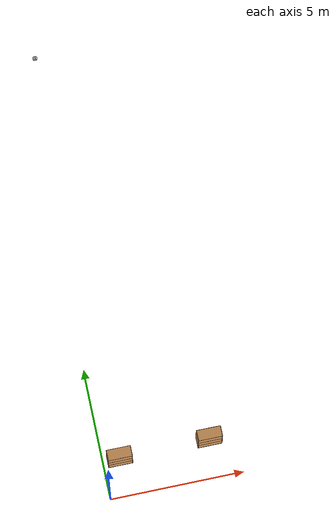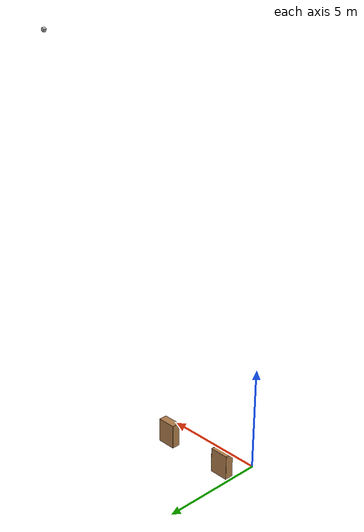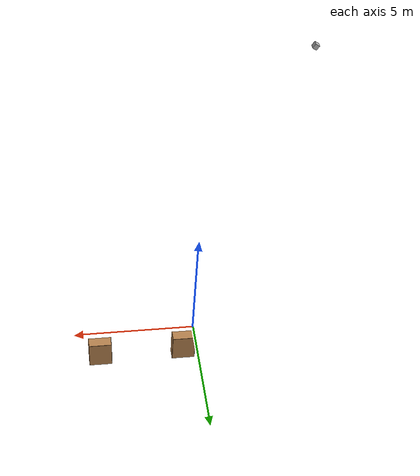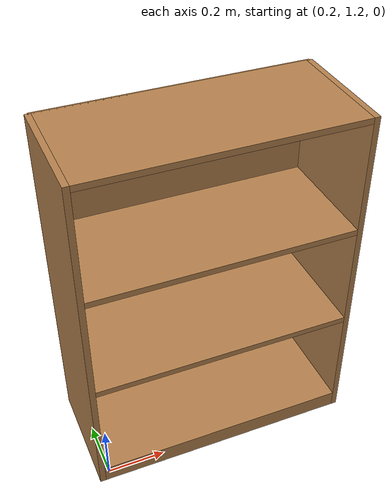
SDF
<sdf version="1.7">
 <world name="default">
  <scene>
   <grid>0</grid>
   <ambient>0.4 0.4 0.4 1</ambient>
   <background>0.7 0.7 0.7 1</background>
   <shadows>1</shadows>
  </scene>
  <light name="sun" type="directional">
   <pose>0 0 10 0 -0 0</pose>
   <diffuse>0.8 0.8 0.8 1</diffuse>
   <specular>0.2 0.2 0.2 1</specular>
   <attenuation>
    <range>1000</range>
    <constant>0.9</constant>
    <linear>0.01</linear>
    <quadratic>0.001</quadratic>
   </attenuation>
   <direction>-0.5 0.1 -0.9</direction>
   <spot><inner_angle>0</inner_angle><outer_angle>0</outer_angle><falloff>0</falloff></spot>
  </light>
  <model name="ground">
   <link name="body">
    <collision name="geom">
     <geometry><plane><normal>0 0 1</normal><size>1 1</size></plane></geometry>
     <surface><friction><ode><mu>100</mu><mu2>50</mu2></ode></friction></surface>
    </collision>
   </link>
   <static>1</static>
  </model>
  <model name="camera">
   <static>1</static>
   <pose>0 10 20 0 1 0</pose>
   <link name="link">
    <inertial>
     <mass>0.1</mass>
     <inertia>
      <ixx>0.000166667</ixx>
      <iyy>0.000166667</iyy>
      <izz>0.000166667</izz>
      <ixy>0</ixy>
      <ixz>0</ixz>
      <iyz>0</iyz>
     </inertia>
    </inertial>
    <collision name="collision"><geometry><box><size>0.1 0.1 0.1</size></box></geometry></collision>
    <visual name="visual"><geometry><box><size>0.1 0.1 0.1</size></box></geometry></visual>
    <sensor name="camera" type="camera">
     <camera>
      <horizontal_fov>1.5</horizontal_fov>
      <image><width>320</width><height>240</height></image>
      <clip><near>0.1</near><far>100</far></clip>
      <lens>
       <intrinsics><fx>171.75</fx><fy>171.75</fy><cx>160.5</cx><cy>120.5</cy><s>0</s></intrinsics>
       <type>stereographic</type>
       <scale_to_hfov>1</scale_to_hfov>
      </lens>
     </camera>
     <always_on>1</always_on>
     <update_rate>30</update_rate>
     <visualize>1</visualize>
    </sensor>
   </link>
  </model>
  <gravity>0 0 -9.8</gravity>
  <magnetic_field>6e-06 2.3e-05 -4.2e-05</magnetic_field>
  <atmosphere type="adiabatic"/>
  <physics type="ode">
   <max_step_size>0.001</max_step_size>
   <real_time_factor>1</real_time_factor>
   <real_time_update_rate>1000</real_time_update_rate>
  </physics>
  <spherical_coordinates>
   <surface_model>EARTH_WGS84</surface_model>
   <latitude_deg>0</latitude_deg>
   <longitude_deg>0</longitude_deg>
   <elevation>0</elevation>
   <heading_deg>0</heading_deg>
  </spherical_coordinates>
  <model name="bookshelf">
   <static>1</static>
   <link name="link">
    <inertial><mass>1</mass></inertial>
    <collision name="back">
     <pose>0 0.005 0.6 0 -0 0</pose>
     <geometry><box><size>0.9 0.01 1.2</size></box></geometry>
    </collision>
    <visual name="visual1">
     <pose>0 0.005 0.6 0 -0 0</pose>
     <geometry><box><size>0.9 0.01 1.2</size></box></geometry>
     <material>
      <script><uri>file://media/materials/scripts/gazebo.material</uri><name>Gazebo/Wood</name></script>
     </material>
    </visual>
    <collision name="left_side">
     <pose>0.45 -0.195 0.6 0 -0 0</pose>
     <geometry><box><size>0.02 0.4 1.2</size></box></geometry>
    </collision>
    <visual name="visual2">
     <pose>0.45 -0.195 0.6 0 -0 0</pose>
     <geometry><box><size>0.02 0.4 1.2</size></box></geometry>
     <material>
      <script><uri>file://media/materials/scripts/gazebo.material</uri><name>Gazebo/Wood</name></script>
     </material>
    </visual>
    <collision name="right_side">
     <pose>-0.45 -0.195 0.6 0 -0 0</pose>
     <geometry><box><size>0.02 0.4 1.2</size></box></geometry>
    </collision>
    <visual name="visual3">
     <pose>-0.45 -0.195 0.6 0 -0 0</pose>
     <geometry><box><size>0.02 0.4 1.2</size></box></geometry>
     <material>
      <script><uri>file://media/materials/scripts/gazebo.material</uri><name>Gazebo/Wood</name></script>
     </material>
    </visual>
    <collision name="bottom">
     <pose>0 -0.195 0.03 0 -0 0</pose>
     <geometry><box><size>0.88 0.4 0.06</size></box></geometry>
    </collision>
    <visual name="visual4">
     <pose>0 -0.195 0.03 0 -0 0</pose>
     <geometry><box><size>0.88 0.4 0.06</size></box></geometry>
     <material>
      <script><uri>file://media/materials/scripts/gazebo.material</uri><name>Gazebo/Wood</name></script>
     </material>
    </visual>
    <collision name="top">
     <pose>0 -0.195 1.19 0 -0 0</pose>
     <geometry><box><size>0.88 0.4 0.02</size></box></geometry>
    </collision>
    <visual name="visual5">
     <pose>0 -0.195 1.19 0 -0 0</pose>
     <geometry><box><size>0.88 0.4 0.02</size></box></geometry>
     <material>
      <script><uri>file://media/materials/scripts/gazebo.material</uri><name>Gazebo/Wood</name></script>
     </material>
    </visual>
    <collision name="low_shelf">
     <pose>0 -0.195 0.43 0 -0 0</pose>
     <geometry><box><size>0.88 0.4 0.02</size></box></geometry>
    </collision>
    <visual name="visual6">
     <pose>0 -0.195 0.43 0 -0 0</pose>
     <geometry><box><size>0.88 0.4 0.02</size></box></geometry>
     <material>
      <script><uri>file://media/materials/scripts/gazebo.material</uri><name>Gazebo/Wood</name></script>
     </material>
    </visual>
    <collision name="high_shelf">
     <pose>0 -0.195 0.8 0 -0 0</pose>
     <geometry><box><size>0.88 0.4 0.02</size></box></geometry>
    </collision>
    <visual name="visual7">
     <pose>0 -0.195 0.8 0 -0 0</pose>
     <geometry><box><size>0.88 0.4 0.02</size></box></geometry>
     <material>
      <script><uri>file://media/materials/scripts/gazebo.material</uri><name>Gazebo/Wood</name></script>
     </material>
    </visual>
   </link>
   <pose>3.99667 1.612 0 0 -0 0</pose>
  </model>
  <model name="bookshelf_0">
   <static>1</static>
   <link name="link">
    <inertial><mass>1</mass></inertial>
    <collision name="back">
     <pose>0 0.005 0.6 0 -0 0</pose>
     <geometry><box><size>0.9 0.01 1.2</size></box></geometry>
    </collision>
    <visual name="visual1">
     <pose>0 0.005 0.6 0 -0 0</pose>
     <geometry><box><size>0.9 0.01 1.2</size></box></geometry>
     <material>
      <script><uri>file://media/materials/scripts/gazebo.material</uri><name>Gazebo/Wood</name></script>
     </material>
    </visual>
    <collision name="left_side">
     <pose>0.45 -0.195 0.6 0 -0 0</pose>
     <geometry><box><size>0.02 0.4 1.2</size></box></geometry>
    </collision>
    <visual name="visual2">
     <pose>0.45 -0.195 0.6 0 -0 0</pose>
     <geometry><box><size>0.02 0.4 1.2</size></box></geometry>
     <material>
      <script><uri>file://media/materials/scripts/gazebo.material</uri><name>Gazebo/Wood</name></script>
     </material>
    </visual>
    <collision name="right_side">
     <pose>-0.45 -0.195 0.6 0 -0 0</pose>
     <geometry><box><size>0.02 0.4 1.2</size></box></geometry>
    </collision>
    <visual name="visual3">
     <pose>-0.45 -0.195 0.6 0 -0 0</pose>
     <geometry><box><size>0.02 0.4 1.2</size></box></geometry>
     <material>
      <script><uri>file://media/materials/scripts/gazebo.material</uri><name>Gazebo/Wood</name></script>
     </material>
    </visual>
    <collision name="bottom">
     <pose>0 -0.195 0.03 0 -0 0</pose>
     <geometry><box><size>0.88 0.4 0.06</size></box></geometry>
    </collision>
    <visual name="visual4">
     <pose>0 -0.195 0.03 0 -0 0</pose>
     <geometry><box><size>0.88 0.4 0.06</size></box></geometry>
     <material>
      <script><uri>file://media/materials/scripts/gazebo.material</uri><name>Gazebo/Wood</name></script>
     </material>
    </visual>
    <collision name="top">
     <pose>0 -0.195 1.19 0 -0 0</pose>
     <geometry><box><size>0.88 0.4 0.02</size></box></geometry>
    </collision>
    <visual name="visual5">
     <pose>0 -0.195 1.19 0 -0 0</pose>
     <geometry><box><size>0.88 0.4 0.02</size></box></geometry>
     <material>
      <script><uri>file://media/materials/scripts/gazebo.material</uri><name>Gazebo/Wood</name></script>
     </material>
    </visual>
    <collision name="low_shelf">
     <pose>0 -0.195 0.43 0 -0 0</pose>
     <geometry><box><size>0.88 0.4 0.02</size></box></geometry>
    </collision>
    <visual name="visual6">
     <pose>0 -0.195 0.43 0 -0 0</pose>
     <geometry><box><size>0.88 0.4 0.02</size></box></geometry>
     <material>
      <script><uri>file://media/materials/scripts/gazebo.material</uri><name>Gazebo/Wood</name></script>
     </material>
    </visual>
    <collision name="high_shelf">
     <pose>0 -0.195 0.8 0 -0 0</pose>
     <geometry><box><size>0.88 0.4 0.02</size></box></geometry>
    </collision>
    <visual name="visual7">
     <pose>0 -0.195 0.8 0 -0 0</pose>
     <geometry><box><size>0.88 0.4 0.02</size></box></geometry>
     <material>
      <script><uri>file://media/materials/scripts/gazebo.material</uri><name>Gazebo/Wood</name></script>
     </material>
    </visual>
   </link>
   <pose>0.618678 1.5634 0 0 -0 0</pose>
  </model>
 </world>
</sdf>
